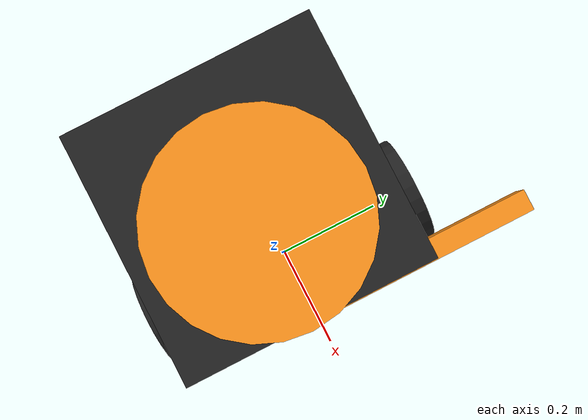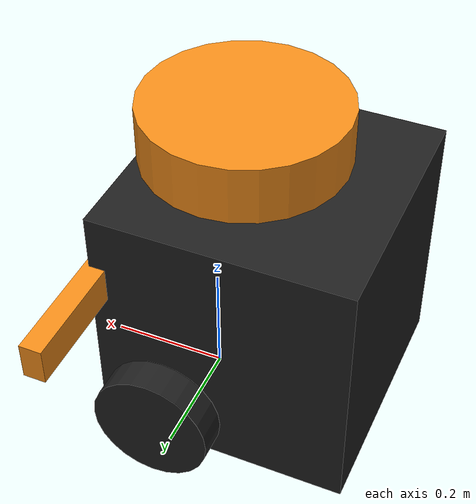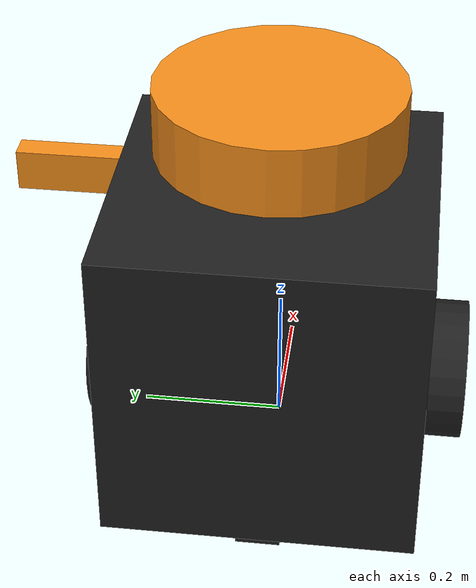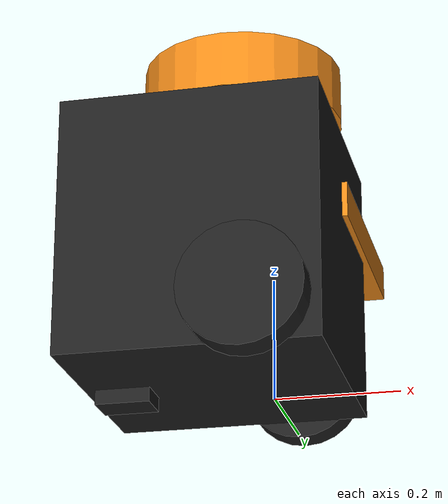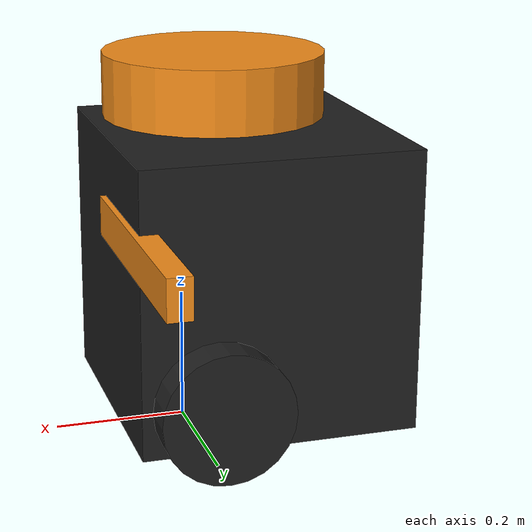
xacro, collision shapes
<?xml version="1.0" ?>
<robot name="turtlebot3_burger" xmlns:xacro="http://ros.org/wiki/xacro">
  <xacro:include filename="$(find mirzaagha_rl)/urdf/common_properties.xacro"/>
  <xacro:include filename="$(find mirzaagha_rl)/urdf/turtlebot3_burger.gazebo.xacro"/>
  <xacro:property name="r200_cam_rgb_px" value="0.015"/>
  <xacro:property name="r200_cam_rgb_py" value="0.054"/>
  <xacro:property name="r200_cam_rgb_pz" value="0.039"/>
  <xacro:property name="r200_cam_depth_offset" value="0.03"/>

  <link name="base_footprint">
   	<origin xyz="0 0 0" rpy="0 0 0"/>
  </link>

  <joint name="base_joint" type="fixed">
    <parent link="base_footprint"/>
    <child link="base_link"/>
    <origin xyz="0.0 0.0 0.030" rpy="0 0 0"/>
  </joint>

  <link name="base_link">
    <visual>
      <origin xyz="-0.096 0 0.0" rpy="0 0 0"/>
      <geometry>
        <mesh filename="package://mirzaagha_rl/meshes/bases/burger_base.stl" scale="0.003 0.003 0.003"/>
      </geometry>
      <material name="light_black"/>
    </visual>

    <collision>
      <origin xyz="-0.096 0 0.21" rpy="0 0 0"/>
      <geometry>
        <box size="0.42 0.42 0.429"/>
      </geometry>
    </collision>

    <inertial>
      <origin xyz="0 0 0" rpy="0 0 0"/>
      <mass value="8.2573504e-01"/>
      <inertia ixx="2.2124416e-03" ixy="-1.2294101e-05" ixz="3.4938785e-05"
               iyy="2.1193702e-03" iyz="-5.0120904e-06"
               izz="2.0064271e-03" />
    </inertial>
  </link>

  <!-- CAMERA , reference: https://github.com/ROBOTIS-GIT/turtlebot3/blob/master/turtlebot3_description/urdf/turtlebot3_waffle.urdf.xacro -->

  <joint name="camera_joint" type="fixed">
    <origin xyz="0.096 0 0.282" rpy="0 0 0"/>
    <parent link="base_link"/>
    <child link="camera_link"/>
  </joint>

  <link name="camera_link">
    <visual>
     <origin xyz="0 0 0" rpy="1.57 0 1.57"/>
      <geometry>
       <mesh filename="package://mirzaagha_rl/meshes/sensors/RPi_Camera_V2.1.stl" scale= "0.003 0.003 0.003"/>
      </geometry>
    </visual>
    <collision>
      <origin xyz="0.009 0.195 0.021" rpy="0 0 0"/>
      <geometry>
        <box size="0.036 0.396 0.060"/>
      </geometry>
    </collision>

    <!-- This inertial field needs doesn't contain reliable data!! -->
  </link>

  <joint name="camera_rgb_joint" type="fixed">
    <origin xyz="${r200_cam_rgb_px} ${r200_cam_rgb_py} ${r200_cam_rgb_pz}" rpy="0 0 0"/>
    <parent link="camera_link"/>
    <child link="camera_rgb_frame"/>
  </joint>
  <link name="camera_rgb_frame"/>

  <joint name="camera_rgb_optical_joint" type="fixed">
    <origin xyz="0 0 0" rpy="-1.57 0 -1.57"/>
    <parent link="camera_rgb_frame"/>
    <child link="camera_rgb_optical_frame"/>
  </joint>
  <link name="camera_rgb_optical_frame"/>

  <joint name="camera_depth_joint" type="fixed">
    <origin xyz="${r200_cam_rgb_px} ${r200_cam_rgb_py + r200_cam_depth_offset} ${r200_cam_rgb_pz}" rpy="0 0 0"/>
    <parent link="camera_link"/>
    <child link="camera_depth_frame"/>
  </joint>
  <link name="camera_depth_frame"/>

  <joint name="camera_depth_optical_joint" type="fixed">
    <origin xyz="0 0 0" rpy="-1.57 0 -1.57"/>
    <parent link="camera_depth_frame"/>
    <child link="camera_depth_optical_frame"/>
  </joint>
  <link name="camera_depth_optical_frame"/>

<!-- camera ended -->

  <joint name="wheel_left_joint" type="continuous">
    <parent link="base_link"/>
    <child link="wheel_left_link"/>
    <origin xyz="0.0 0.24 0.069" rpy="-1.57 0 0"/>
    <axis xyz="0 0 1"/>
  </joint>

  <link name="wheel_left_link">
    <visual>
      <origin xyz="0 0 0" rpy="1.57 0 0"/>
      <geometry>
        <mesh filename="package://mirzaagha_rl/meshes/wheels/left_tire.stl" scale="0.003 0.003 0.003"/>
      </geometry>
      <material name="dark"/>
    </visual>

    <collision>
      <origin xyz="0 0 0" rpy="0 0 0"/>
      <geometry>
        <cylinder length="0.054" radius="0.099"/>
      </geometry>
    </collision>

    <inertial>
      <origin xyz="0 0 0" />
      <mass value="2.8498940e-02" />
      <inertia ixx="1.1175580e-05" ixy="-4.2369783e-11" ixz="-5.9381719e-09"
               iyy="1.1192413e-05" iyz="-1.4400107e-11"
               izz="2.0712558e-05" />
      </inertial>
  </link>

  <joint name="wheel_right_joint" type="continuous">
    <parent link="base_link"/>
    <child link="wheel_right_link"/>
    <origin xyz="0.0 -0.24 0.069" rpy="-1.57 0 0"/>
    <axis xyz="0 0 1"/>
  </joint>

  <link name="wheel_right_link">
    <visual>
      <origin xyz="0 0 0" rpy="1.57 0 0"/>
      <geometry>
        <mesh filename="package://mirzaagha_rl/meshes/wheels/right_tire.stl" scale="0.003 0.003 0.003"/>
      </geometry>
      <material name="dark"/>
    </visual>

    <collision>
      <origin xyz="0 0 0" rpy="0 0 0"/>
      <geometry>
        <cylinder length="0.054" radius="0.099"/>
      </geometry>
    </collision>

    <inertial>
      <origin xyz="0 0 0" />
      <mass value="2.8498940e-02" />
      <inertia ixx="1.1175580e-05" ixy="-4.2369783e-11" ixz="-5.9381719e-09"
               iyy="1.1192413e-05" iyz="-1.4400107e-11"
               izz="2.0712558e-05" />
      </inertial>
  </link>

  <joint name="caster_back_joint" type="fixed">
    <parent link="base_link"/>
    <child link="caster_back_link"/>
    <origin xyz="-0.243 0 -0.012" rpy="-1.57 0 0"/>
  </joint>

  <link name="caster_back_link">
    <collision>
      <origin xyz="0 0.003 0" rpy="0 0 0"/>
      <geometry>
        <box size="0.090 0.027 0.06"/>
      </geometry>
    </collision>

    <inertial>
      <origin xyz="0 0 0" />
      <mass value="0.005" />
      <inertia ixx="0.001" ixy="0.0" ixz="0.0"
               iyy="0.001" iyz="0.0"
               izz="0.001" />
    </inertial>
  </link>

  <joint name="imu_joint" type="fixed">
    <parent link="base_link"/>
    <child link="imu_link"/>
    <origin xyz="-0.096 0 0.204" rpy="0 0 0"/>
  </joint>

  <link name="imu_link"/>

  <joint name="scan_joint" type="fixed">
    <parent link="base_link"/>
    <child link="base_scan"/>
    <origin xyz="-0.096 0 0.516" rpy="0 0 0"/>
  </joint>

  <link name="base_scan">
    <visual>
      <origin xyz="0 0 0.0" rpy="0 0 0"/>
      <geometry>
        <mesh filename="package://mirzaagha_rl/meshes/sensors/lds.stl" scale="0.003 0.003 0.003"/>
      </geometry>
     <material name="dark"/>
    </visual>

    <collision>
      <origin xyz="0.045 0 -0.0195" rpy="0 0 0"/>
      <geometry>
        <cylinder length="0.0945" radius="0.165"/>
      </geometry>
    </collision>

    <inertial>
      <mass value="0.114" />
      <origin xyz="0 0 0" />
      <inertia ixx="0.001" ixy="0.0" ixz="0.0"
               iyy="0.001" iyz="0.0"
               izz="0.001" />
    </inertial>
  </link>

</robot>
